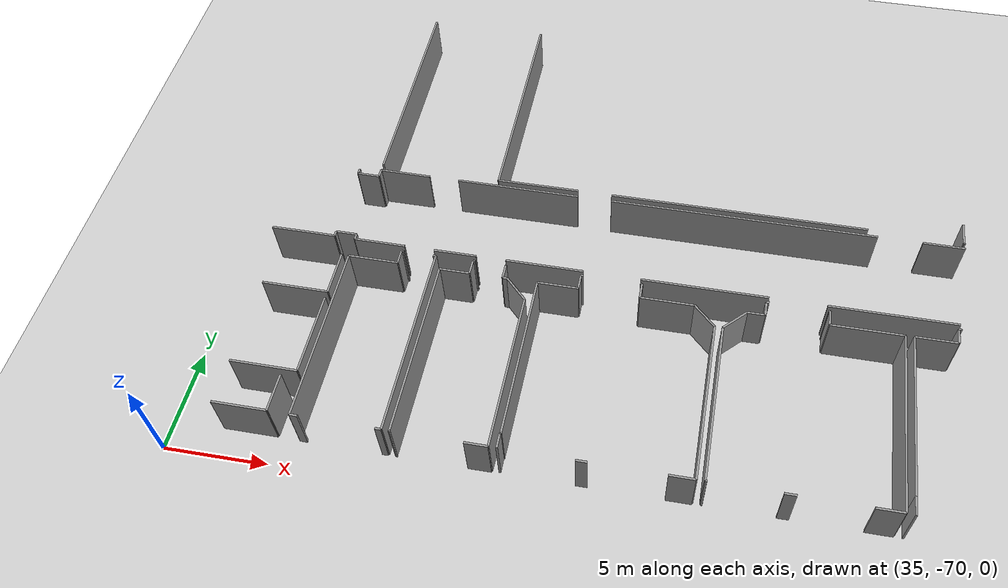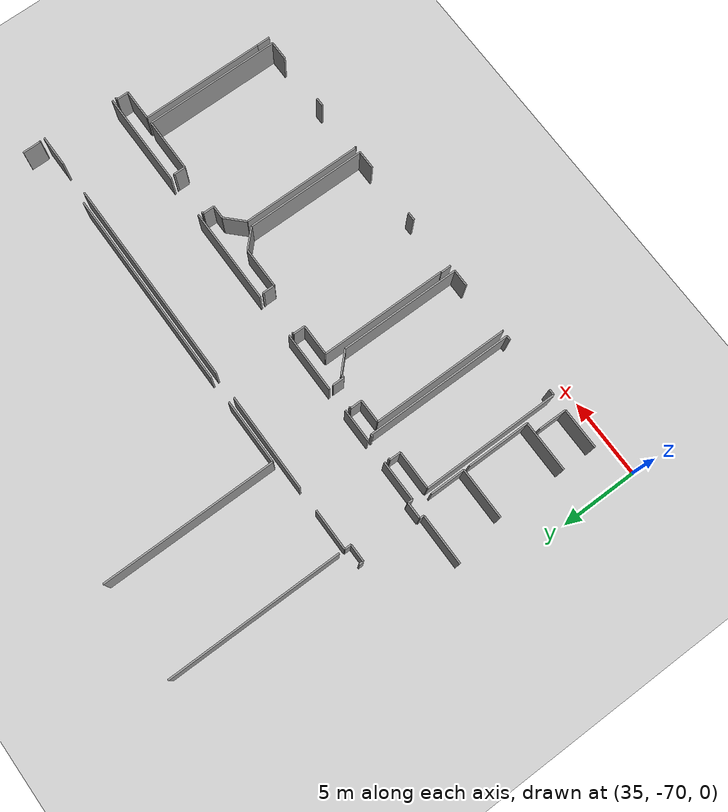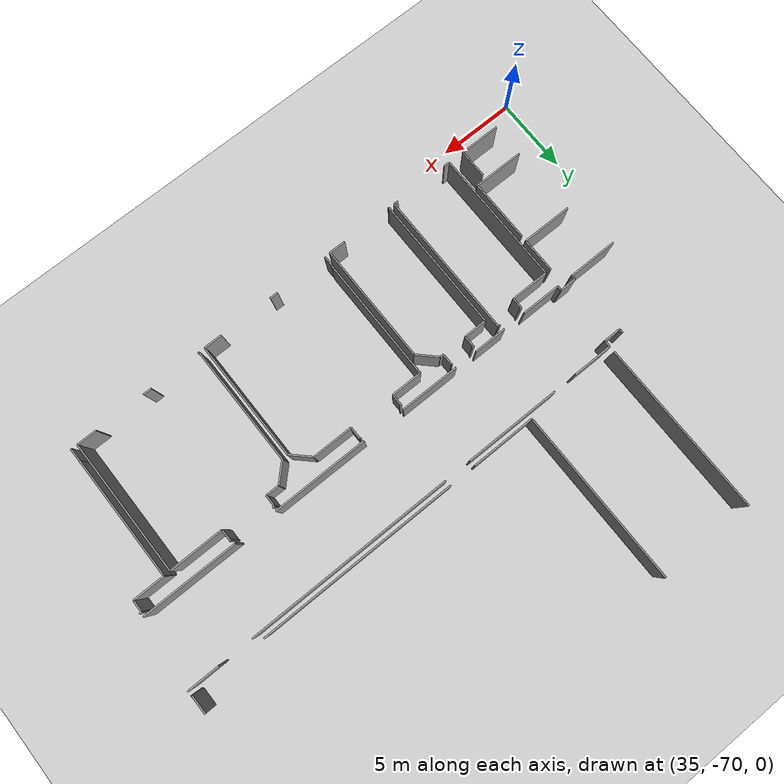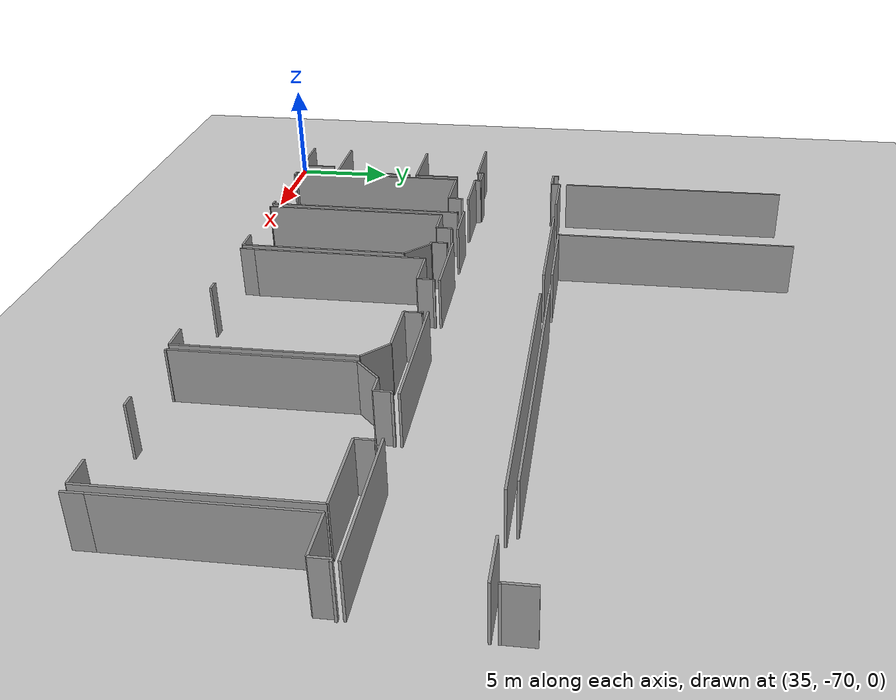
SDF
<sdf version="1.6">
 <world name="default">
  <model name="ground_plane">
   <static>1</static>
   <link name="link">
    <collision name="collision">
     <geometry><plane><normal>0 0 1</normal><size>100 100</size></plane></geometry>
     <surface><friction><ode><mu>100</mu><mu2>50</mu2></ode></friction></surface>
    </collision>
    <visual name="visual">
     <cast_shadows>0</cast_shadows>
     <geometry><plane><normal>0 0 1</normal><size>100 100</size></plane></geometry>
     <material>
      <script><uri>file://media/materials/scripts/gazebo.material</uri><name>Gazebo/Grey</name></script>
     </material>
    </visual>
   </link>
  </model>
  <model name="0510035520_A_40_1_103">
   <static>1</static>
   <link name="Wall_920">
    <collision name="Wall_920_Collision">
     <geometry><box><size>2.25810749932 0.1 2.5</size></box></geometry>
     <pose>1.12905374966 0 1.25 0 0 0</pose>
    </collision>
    <visual name="Wall_920_Visual">
     <pose>1.12905374966 0 1.25 0 0 0</pose>
     <geometry><box><size>2.25810749932 0.1 2.5</size></box></geometry>
     <material>
      <script><uri>file://media/materials/scripts/gazebo.material</uri><name>Gazebo/Grey</name></script>
      <ambient>1 1 1 1</ambient>
     </material>
    </visual>
    <pose>152.880248222 -128.302993001 0 0 0 -1.57079632679</pose>
   </link>
   <link name="Wall_921">
    <collision name="Wall_921_Collision">
     <geometry><box><size>3.27079142899 0.1 2.5</size></box></geometry>
     <pose>1.63539571449 0 1.25 0 0 0</pose>
    </collision>
    <visual name="Wall_921_Visual">
     <pose>1.63539571449 0 1.25 0 0 0</pose>
     <geometry><box><size>3.27079142899 0.1 2.5</size></box></geometry>
     <material>
      <script><uri>file://media/materials/scripts/gazebo.material</uri><name>Gazebo/Grey</name></script>
      <ambient>1 1 1 1</ambient>
     </material>
    </visual>
    <pose>152.880248222 -130.561100501 0 0 0 3.14159265359</pose>
   </link>
   <link name="Wall_925">
    <collision name="Wall_925_Collision">
     <geometry><box><size>4.07129396387 0.1 2.5</size></box></geometry>
     <pose>2.03564698194 0 1.25 0 0 0</pose>
    </collision>
    <visual name="Wall_925_Visual">
     <pose>2.03564698194 0 1.25 0 0 0</pose>
     <geometry><box><size>4.07129396387 0.1 2.5</size></box></geometry>
     <material>
      <script><uri>file://media/materials/scripts/gazebo.material</uri><name>Gazebo/Grey</name></script>
      <ambient>1 1 1 1</ambient>
     </material>
    </visual>
    <pose>152.862735643 -130.929372276 0 0 0 -1.57079632679</pose>
   </link>
   <link name="Wall_926">
    <collision name="Wall_926_Collision">
     <geometry><box><size>3.24490326838 0.1 2.5</size></box></geometry>
     <pose>1.62245163419 0 1.25 0 0 0</pose>
    </collision>
    <visual name="Wall_926_Visual">
     <pose>1.62245163419 0 1.25 0 0 0</pose>
     <geometry><box><size>3.24490326838 0.1 2.5</size></box></geometry>
     <material>
      <script><uri>file://media/materials/scripts/gazebo.material</uri><name>Gazebo/Grey</name></script>
      <ambient>1 1 1 1</ambient>
     </material>
    </visual>
    <pose>152.862735643 -135.000666239 0 0 0 3.14159265359</pose>
   </link>
   <link name="Wall_930">
    <collision name="Wall_930_Collision">
     <geometry><box><size>1.84821162302 0.1 2.5</size></box></geometry>
     <pose>0.924105811511 0 1.25 0 0 0</pose>
    </collision>
    <visual name="Wall_930_Visual">
     <pose>0.924105811511 0 1.25 0 0 0</pose>
     <geometry><box><size>1.84821162302 0.1 2.5</size></box></geometry>
     <material>
      <script><uri>file://media/materials/scripts/gazebo.material</uri><name>Gazebo/Grey</name></script>
      <ambient>1 1 1 1</ambient>
     </material>
    </visual>
    <pose>152.184313551 -135.334928078 0 0 0 -1.57079632679</pose>
   </link>
   <link name="Wall_931">
    <collision name="Wall_931_Collision">
     <geometry><box><size>2.6091205005 0.1 2.5</size></box></geometry>
     <pose>1.30456025025 0 1.25 0 0 0</pose>
    </collision>
    <visual name="Wall_931_Visual">
     <pose>1.30456025025 0 1.25 0 0 0</pose>
     <geometry><box><size>2.6091205005 0.1 2.5</size></box></geometry>
     <material>
      <script><uri>file://media/materials/scripts/gazebo.material</uri><name>Gazebo/Grey</name></script>
      <ambient>1 1 1 1</ambient>
     </material>
    </visual>
    <pose>152.184313551 -137.183139701 0 0 0 3.14159265359</pose>
   </link>
   <link name="Wall_935">
    <collision name="Wall_935_Collision">
     <geometry><box><size>8.87710103362 0.1 2.5</size></box></geometry>
     <pose>4.43855051681 0 1.25 0 0 0</pose>
    </collision>
    <visual name="Wall_935_Visual">
     <pose>4.43855051681 0 1.25 0 0 0</pose>
     <geometry><box><size>8.87710103362 0.1 2.5</size></box></geometry>
     <material>
      <script><uri>file://media/materials/scripts/gazebo.material</uri><name>Gazebo/Grey</name></script>
      <ambient>1 1 1 1</ambient>
     </material>
    </visual>
    <pose>153.240905832 -137.198875642 0 0 0 1.57079632679</pose>
   </link>
   <link name="Wall_936">
    <collision name="Wall_936_Collision">
     <geometry><box><size>2.47891828098 0.1 2.5</size></box></geometry>
     <pose>1.23945914049 0 1.25 0 0 0</pose>
    </collision>
    <visual name="Wall_936_Visual">
     <pose>1.23945914049 0 1.25 0 0 0</pose>
     <geometry><box><size>2.47891828098 0.1 2.5</size></box></geometry>
     <material>
      <script><uri>file://media/materials/scripts/gazebo.material</uri><name>Gazebo/Grey</name></script>
      <ambient>1 1 1 1</ambient>
     </material>
    </visual>
    <pose>153.240905832 -128.321774608 0 0 0 0.0</pose>
   </link>
   <link name="Wall_937">
    <collision name="Wall_937_Collision">
     <geometry><box><size>0.715223888173 0.1 2.5</size></box></geometry>
     <pose>0.357611944087 0 1.25 0 0 0</pose>
    </collision>
    <visual name="Wall_937_Visual">
     <pose>0.357611944087 0 1.25 0 0 0</pose>
     <geometry><box><size>0.715223888173 0.1 2.5</size></box></geometry>
     <material>
      <script><uri>file://media/materials/scripts/gazebo.material</uri><name>Gazebo/Grey</name></script>
      <ambient>1 1 1 1</ambient>
     </material>
    </visual>
    <pose>155.719824113 -128.321774608 0 0 0 1.57079632679</pose>
   </link>
   <link name="Wall_938">
    <collision name="Wall_938_Collision">
     <geometry><box><size>0.121319027164 0.1 2.5</size></box></geometry>
     <pose>0.0606595135818 0 1.25 0 0 0</pose>
    </collision>
    <visual name="Wall_938_Visual">
     <pose>0.0606595135818 0 1.25 0 0 0</pose>
     <geometry><box><size>0.121319027164 0.1 2.5</size></box></geometry>
     <material>
      <script><uri>file://media/materials/scripts/gazebo.material</uri><name>Gazebo/Grey</name></script>
      <ambient>1 1 1 1</ambient>
     </material>
    </visual>
    <pose>155.719824113 -127.60655072 0 0 0 0.0</pose>
   </link>
   <link name="Wall_939">
    <collision name="Wall_939_Collision">
     <geometry><box><size>0.141877272352 0.1 2.5</size></box></geometry>
     <pose>0.0709386361762 0 1.25 0 0 0</pose>
    </collision>
    <visual name="Wall_939_Visual">
     <pose>0.0709386361762 0 1.25 0 0 0</pose>
     <geometry><box><size>0.141877272352 0.1 2.5</size></box></geometry>
     <material>
      <script><uri>file://media/materials/scripts/gazebo.material</uri><name>Gazebo/Grey</name></script>
      <ambient>1 1 1 1</ambient>
     </material>
    </visual>
    <pose>157.32489007 -127.60655072 0 0 0 0.0</pose>
   </link>
   <link name="Wall_940">
    <collision name="Wall_940_Collision">
     <geometry><box><size>9.60653802958 0.1 2.5</size></box></geometry>
     <pose>4.80326901479 0 1.25 0 0 0</pose>
    </collision>
    <visual name="Wall_940_Visual">
     <pose>4.80326901479 0 1.25 0 0 0</pose>
     <geometry><box><size>9.60653802958 0.1 2.5</size></box></geometry>
     <material>
      <script><uri>file://media/materials/scripts/gazebo.material</uri><name>Gazebo/Grey</name></script>
      <ambient>1 1 1 1</ambient>
     </material>
    </visual>
    <pose>157.466767343 -127.60655072 0 0 0 -1.57079632679</pose>
   </link>
   <link name="Wall_941">
    <collision name="Wall_941_Collision">
     <geometry><box><size>0.293906764551 0.1 2.5</size></box></geometry>
     <pose>0.146953382275 0 1.25 0 0 0</pose>
    </collision>
    <visual name="Wall_941_Visual">
     <pose>0.146953382275 0 1.25 0 0 0</pose>
     <geometry><box><size>0.293906764551 0.1 2.5</size></box></geometry>
     <material>
      <script><uri>file://media/materials/scripts/gazebo.material</uri><name>Gazebo/Grey</name></script>
      <ambient>1 1 1 1</ambient>
     </material>
    </visual>
    <pose>157.466767343 -137.213088749 0 0 0 3.14159265359</pose>
   </link>
   <link name="Wall_942">
    <collision name="Wall_942_Collision">
     <geometry><box><size>0.376408183269 0.1 2.5</size></box></geometry>
     <pose>0.188204091635 0 1.25 0 0 0</pose>
    </collision>
    <visual name="Wall_942_Visual">
     <pose>0.188204091635 0 1.25 0 0 0</pose>
     <geometry><box><size>0.376408183269 0.1 2.5</size></box></geometry>
     <material>
      <script><uri>file://media/materials/scripts/gazebo.material</uri><name>Gazebo/Grey</name></script>
      <ambient>1 1 1 1</ambient>
     </material>
    </visual>
    <pose>153.617045577 -137.213088749 0 0 0 3.10382384806</pose>
   </link>
   <link name="Wall_943">
    <collision name="Wall_943_Collision">
     <geometry><box><size>8.90628866568 0.1 2.5</size></box></geometry>
     <pose>4.45314433284 0 1.25 0 0 0</pose>
    </collision>
    <visual name="Wall_943_Visual">
     <pose>4.45314433284 0 1.25 0 0 0</pose>
     <geometry><box><size>8.90628866568 0.1 2.5</size></box></geometry>
     <material>
      <script><uri>file://media/materials/scripts/gazebo.material</uri><name>Gazebo/Grey</name></script>
      <ambient>1 1 1 1</ambient>
     </material>
    </visual>
    <pose>157.834277701 -137.244814436 0 0 0 1.57079632679</pose>
   </link>
   <link name="Wall_944">
    <collision name="Wall_944_Collision">
     <geometry><box><size>1.49821384382 0.1 2.5</size></box></geometry>
     <pose>0.74910692191 0 1.25 0 0 0</pose>
    </collision>
    <visual name="Wall_944_Visual">
     <pose>0.74910692191 0 1.25 0 0 0</pose>
     <geometry><box><size>1.49821384382 0.1 2.5</size></box></geometry>
     <material>
      <script><uri>file://media/materials/scripts/gazebo.material</uri><name>Gazebo/Grey</name></script>
      <ambient>1 1 1 1</ambient>
     </material>
    </visual>
    <pose>157.834277701 -128.338525771 0 0 0 0.0</pose>
   </link>
   <link name="Wall_945">
    <collision name="Wall_945_Collision">
     <geometry><box><size>0.757101795039 0.1 2.5</size></box></geometry>
     <pose>0.37855089752 0 1.25 0 0 0</pose>
    </collision>
    <visual name="Wall_945_Visual">
     <pose>0.37855089752 0 1.25 0 0 0</pose>
     <geometry><box><size>0.757101795039 0.1 2.5</size></box></geometry>
     <material>
      <script><uri>file://media/materials/scripts/gazebo.material</uri><name>Gazebo/Grey</name></script>
      <ambient>1 1 1 1</ambient>
     </material>
    </visual>
    <pose>159.332491545 -128.338525771 0 0 0 1.57079632679</pose>
   </link>
   <link name="Wall_946">
    <collision name="Wall_946_Collision">
     <geometry><box><size>0.120303805179 0.1 2.5</size></box></geometry>
     <pose>0.0601519025895 0 1.25 0 0 0</pose>
    </collision>
    <visual name="Wall_946_Visual">
     <pose>0.0601519025895 0 1.25 0 0 0</pose>
     <geometry><box><size>0.120303805179 0.1 2.5</size></box></geometry>
     <material>
      <script><uri>file://media/materials/scripts/gazebo.material</uri><name>Gazebo/Grey</name></script>
      <ambient>1 1 1 1</ambient>
     </material>
    </visual>
    <pose>159.332491545 -127.581423976 0 0 0 0.0</pose>
   </link>
   <link name="Wall_947">
    <collision name="Wall_947_Collision">
     <geometry><box><size>0.0489844607585 0.1 2.5</size></box></geometry>
     <pose>0.0244922303792 0 1.25 0 0 0</pose>
    </collision>
    <visual name="Wall_947_Visual">
     <pose>0.0244922303792 0 1.25 0 0 0</pose>
     <geometry><box><size>0.0489844607585 0.1 2.5</size></box></geometry>
     <material>
      <script><uri>file://media/materials/scripts/gazebo.material</uri><name>Gazebo/Grey</name></script>
      <ambient>1 1 1 1</ambient>
     </material>
    </visual>
    <pose>160.93095856 -127.581423976 0 0 0 0.0</pose>
   </link>
   <link name="Wall_948">
    <collision name="Wall_948_Collision">
     <geometry><box><size>0.740604437789 0.1 2.5</size></box></geometry>
     <pose>0.370302218895 0 1.25 0 0 0</pose>
    </collision>
    <visual name="Wall_948_Visual">
     <pose>0.370302218895 0 1.25 0 0 0</pose>
     <geometry><box><size>0.740604437789 0.1 2.5</size></box></geometry>
     <material>
      <script><uri>file://media/materials/scripts/gazebo.material</uri><name>Gazebo/Grey</name></script>
      <ambient>1 1 1 1</ambient>
     </material>
    </visual>
    <pose>160.979943021 -127.581423976 0 0 0 -1.57079632679</pose>
   </link>
   <link name="Wall_949">
    <collision name="Wall_949_Collision">
     <geometry><box><size>0.234770083946 0.1 2.5</size></box></geometry>
     <pose>0.117385041973 0 1.25 0 0 0</pose>
    </collision>
    <visual name="Wall_949_Visual">
     <pose>0.117385041973 0 1.25 0 0 0</pose>
     <geometry><box><size>0.234770083946 0.1 2.5</size></box></geometry>
     <material>
      <script><uri>file://media/materials/scripts/gazebo.material</uri><name>Gazebo/Grey</name></script>
      <ambient>1 1 1 1</ambient>
     </material>
    </visual>
    <pose>160.979943021 -128.322028414 0 0 0 0.0</pose>
   </link>
   <link name="Wall_950">
    <collision name="Wall_950_Collision">
     <geometry><box><size>1.50431620233 0.1 2.5</size></box></geometry>
     <pose>0.752158101166 0 1.25 0 0 0</pose>
    </collision>
    <visual name="Wall_950_Visual">
     <pose>0.752158101166 0 1.25 0 0 0</pose>
     <geometry><box><size>1.50431620233 0.1 2.5</size></box></geometry>
     <material>
      <script><uri>file://media/materials/scripts/gazebo.material</uri><name>Gazebo/Grey</name></script>
      <ambient>1 1 1 1</ambient>
     </material>
    </visual>
    <pose>161.214713105 -128.322028414 0 0 0 -0.780387468038</pose>
   </link>
   <link name="Wall_951">
    <collision name="Wall_951_Collision">
     <geometry><box><size>7.83269141693 0.1 2.5</size></box></geometry>
     <pose>3.91634570847 0 1.25 0 0 0</pose>
    </collision>
    <visual name="Wall_951_Visual">
     <pose>3.91634570847 0 1.25 0 0 0</pose>
     <geometry><box><size>7.83269141693 0.1 2.5</size></box></geometry>
     <material>
      <script><uri>file://media/materials/scripts/gazebo.material</uri><name>Gazebo/Grey</name></script>
      <ambient>1 1 1 1</ambient>
     </material>
    </visual>
    <pose>162.283741854 -129.380397333 0 0 0 -1.57079632679</pose>
   </link>
   <link name="Wall_952">
    <collision name="Wall_952_Collision">
     <geometry><box><size>1.09948540936 0.1 2.5</size></box></geometry>
     <pose>0.549742704678 0 1.25 0 0 0</pose>
    </collision>
    <visual name="Wall_952_Visual">
     <pose>0.549742704678 0 1.25 0 0 0</pose>
     <geometry><box><size>1.09948540936 0.1 2.5</size></box></geometry>
     <material>
      <script><uri>file://media/materials/scripts/gazebo.material</uri><name>Gazebo/Grey</name></script>
      <ambient>1 1 1 1</ambient>
     </material>
    </visual>
    <pose>162.283741854 -137.213088749 0 0 0 3.14159265359</pose>
   </link>
   <link name="Wall_953">
    <collision name="Wall_953_Collision">
     <geometry><box><size>0.0558291329413 0.1 2.5</size></box></geometry>
     <pose>0.0279145664706 0 1.25 0 0 0</pose>
    </collision>
    <visual name="Wall_953_Visual">
     <pose>0.0279145664706 0 1.25 0 0 0</pose>
     <geometry><box><size>0.0558291329413 0.1 2.5</size></box></geometry>
     <material>
      <script><uri>file://media/materials/scripts/gazebo.material</uri><name>Gazebo/Grey</name></script>
      <ambient>1 1 1 1</ambient>
     </material>
    </visual>
    <pose>157.880216496 -137.213088749 0 0 0 -2.53719807573</pose>
   </link>
   <link name="Wall_954">
    <collision name="Wall_954_Collision">
     <geometry><box><size>0.0347713529736 0.1 2.5</size></box></geometry>
     <pose>0.0173856764868 0 1.25 0 0 0</pose>
    </collision>
    <visual name="Wall_954_Visual">
     <pose>0.0173856764868 0 1.25 0 0 0</pose>
     <geometry><box><size>0.0347713529736 0.1 2.5</size></box></geometry>
     <material>
      <script><uri>file://media/materials/scripts/gazebo.material</uri><name>Gazebo/Grey</name></script>
      <ambient>1 1 1 1</ambient>
     </material>
    </visual>
    <pose>162.65480549 -136.505225221 0 0 0 0.0</pose>
   </link>
   <link name="Wall_955">
    <collision name="Wall_955_Collision">
     <geometry><box><size>8.1981713314 0.1 2.5</size></box></geometry>
     <pose>4.0990856657 0 1.25 0 0 0</pose>
    </collision>
    <visual name="Wall_955_Visual">
     <pose>4.0990856657 0 1.25 0 0 0</pose>
     <geometry><box><size>8.1981713314 0.1 2.5</size></box></geometry>
     <material>
      <script><uri>file://media/materials/scripts/gazebo.material</uri><name>Gazebo/Grey</name></script>
      <ambient>1 1 1 1</ambient>
     </material>
    </visual>
    <pose>162.689576843 -136.505225221 0 0 0 1.57079632679</pose>
   </link>
   <link name="Wall_956">
    <collision name="Wall_956_Collision">
     <geometry><box><size>2.00785528011 0.1 2.5</size></box></geometry>
     <pose>1.00392764005 0 1.25 0 0 0</pose>
    </collision>
    <visual name="Wall_956_Visual">
     <pose>1.00392764005 0 1.25 0 0 0</pose>
     <geometry><box><size>2.00785528011 0.1 2.5</size></box></geometry>
     <material>
      <script><uri>file://media/materials/scripts/gazebo.material</uri><name>Gazebo/Grey</name></script>
      <ambient>1 1 1 1</ambient>
     </material>
    </visual>
    <pose>162.689576843 -128.307053889 0 0 0 0.0</pose>
   </link>
   <link name="Wall_957">
    <collision name="Wall_957_Collision">
     <geometry><box><size>0.77156870832 0.1 2.5</size></box></geometry>
     <pose>0.38578435416 0 1.25 0 0 0</pose>
    </collision>
    <visual name="Wall_957_Visual">
     <pose>0.38578435416 0 1.25 0 0 0</pose>
     <geometry><box><size>0.77156870832 0.1 2.5</size></box></geometry>
     <material>
      <script><uri>file://media/materials/scripts/gazebo.material</uri><name>Gazebo/Grey</name></script>
      <ambient>1 1 1 1</ambient>
     </material>
    </visual>
    <pose>164.697432123 -128.307053889 0 0 0 1.57079632679</pose>
   </link>
   <link name="Wall_958">
    <collision name="Wall_958_Collision">
     <geometry><box><size>0.124618498614 0.1 2.5</size></box></geometry>
     <pose>0.0623092493068 0 1.25 0 0 0</pose>
    </collision>
    <visual name="Wall_958_Visual">
     <pose>0.0623092493068 0 1.25 0 0 0</pose>
     <geometry><box><size>0.124618498614 0.1 2.5</size></box></geometry>
     <material>
      <script><uri>file://media/materials/scripts/gazebo.material</uri><name>Gazebo/Grey</name></script>
      <ambient>1 1 1 1</ambient>
     </material>
    </visual>
    <pose>164.697432123 -127.535485181 0 0 0 0.0</pose>
   </link>
   <link name="Wall_959">
    <collision name="Wall_959_Collision">
     <geometry><box><size>0.0794411202974 0.1 2.5</size></box></geometry>
     <pose>0.0397205601487 0 1.25 0 0 0</pose>
    </collision>
    <visual name="Wall_959_Visual">
     <pose>0.0397205601487 0 1.25 0 0 0</pose>
     <geometry><box><size>0.0794411202974 0.1 2.5</size></box></geometry>
     <material>
      <script><uri>file://media/materials/scripts/gazebo.material</uri><name>Gazebo/Grey</name></script>
      <ambient>1 1 1 1</ambient>
     </material>
    </visual>
    <pose>167.612642052 -127.535485181 0 0 0 0.0</pose>
   </link>
   <link name="Wall_960">
    <collision name="Wall_960_Collision">
     <geometry><box><size>0.792634564501 0.1 2.5</size></box></geometry>
     <pose>0.396317282251 0 1.25 0 0 0</pose>
    </collision>
    <visual name="Wall_960_Visual">
     <pose>0.396317282251 0 1.25 0 0 0</pose>
     <geometry><box><size>0.792634564501 0.1 2.5</size></box></geometry>
     <material>
      <script><uri>file://media/materials/scripts/gazebo.material</uri><name>Gazebo/Grey</name></script>
      <ambient>1 1 1 1</ambient>
     </material>
    </visual>
    <pose>167.692083172 -127.535485181 0 0 0 -1.57079632679</pose>
   </link>
   <link name="Wall_961">
    <collision name="Wall_961_Collision">
     <geometry><box><size>2.63247060615 0.1 2.5</size></box></geometry>
     <pose>1.31623530308 0 1.25 0 0 0</pose>
    </collision>
    <visual name="Wall_961_Visual">
     <pose>1.31623530308 0 1.25 0 0 0</pose>
     <geometry><box><size>2.63247060615 0.1 2.5</size></box></geometry>
     <material>
      <script><uri>file://media/materials/scripts/gazebo.material</uri><name>Gazebo/Grey</name></script>
      <ambient>1 1 1 1</ambient>
     </material>
    </visual>
    <pose>167.692083172 -128.328119745 0 0 0 0.0</pose>
   </link>
   <link name="Wall_962">
    <collision name="Wall_962_Collision">
     <geometry><box><size>1.47820399923 0.1 2.5</size></box></geometry>
     <pose>0.739101999615 0 1.25 0 0 0</pose>
    </collision>
    <visual name="Wall_962_Visual">
     <pose>0.739101999615 0 1.25 0 0 0</pose>
     <geometry><box><size>1.47820399923 0.1 2.5</size></box></geometry>
     <material>
      <script><uri>file://media/materials/scripts/gazebo.material</uri><name>Gazebo/Grey</name></script>
      <ambient>1 1 1 1</ambient>
     </material>
    </visual>
    <pose>170.324553778 -128.328119745 0 0 0 -0.773256943593</pose>
   </link>
   <link name="Wall_963">
    <collision name="Wall_963_Collision">
     <geometry><box><size>7.84538169174 0.1 2.5</size></box></geometry>
     <pose>3.92269084587 0 1.25 0 0 0</pose>
    </collision>
    <visual name="Wall_963_Visual">
     <pose>3.92269084587 0 1.25 0 0 0</pose>
     <geometry><box><size>7.84538169174 0.1 2.5</size></box></geometry>
     <material>
      <script><uri>file://media/materials/scripts/gazebo.material</uri><name>Gazebo/Grey</name></script>
      <ambient>1 1 1 1</ambient>
     </material>
    </visual>
    <pose>171.382415086 -129.360600504 0 0 0 -1.57079632679</pose>
   </link>
   <link name="Wall_964">
    <collision name="Wall_964_Collision">
     <geometry><box><size>1.20278424629 0.1 2.5</size></box></geometry>
     <pose>0.601392123146 0 1.25 0 0 0</pose>
    </collision>
    <visual name="Wall_964_Visual">
     <pose>0.601392123146 0 1.25 0 0 0</pose>
     <geometry><box><size>1.20278424629 0.1 2.5</size></box></geometry>
     <material>
      <script><uri>file://media/materials/scripts/gazebo.material</uri><name>Gazebo/Grey</name></script>
      <ambient>1 1 1 1</ambient>
     </material>
    </visual>
    <pose>171.382415086 -137.205982196 0 0 0 3.14159265359</pose>
   </link>
   <link name="Wall_965">
    <collision name="Wall_965_Collision">
     <geometry><box><size>0.539336679336 0.1 2.5</size></box></geometry>
     <pose>0.269668339668 0 1.25 0 0 0</pose>
    </collision>
    <visual name="Wall_965_Visual">
     <pose>0.269668339668 0 1.25 0 0 0</pose>
     <geometry><box><size>0.539336679336 0.1 2.5</size></box></geometry>
     <material>
      <script><uri>file://media/materials/scripts/gazebo.material</uri><name>Gazebo/Grey</name></script>
      <ambient>1 1 1 1</ambient>
     </material>
    </visual>
    <pose>166.672292688 -137.205982196 0 0 0 3.14159265359</pose>
   </link>
   <link name="Wall_966">
    <collision name="Wall_966_Collision">
     <geometry><box><size>0.700810105648 0.1 2.5</size></box></geometry>
     <pose>0.350405052824 0 1.25 0 0 0</pose>
    </collision>
    <visual name="Wall_966_Visual">
     <pose>0.350405052824 0 1.25 0 0 0</pose>
     <geometry><box><size>0.700810105648 0.1 2.5</size></box></geometry>
     <material>
      <script><uri>file://media/materials/scripts/gazebo.material</uri><name>Gazebo/Grey</name></script>
      <ambient>1 1 1 1</ambient>
     </material>
    </visual>
    <pose>162.663434877 -137.205982196 0 0 0 1.58311008323</pose>
   </link>
   <link name="Wall_967">
    <collision name="Wall_967_Collision">
     <geometry><box><size>7.83396044441 0.1 2.5</size></box></geometry>
     <pose>3.91698022221 0 1.25 0 0 0</pose>
    </collision>
    <visual name="Wall_967_Visual">
     <pose>3.91698022221 0 1.25 0 0 0</pose>
     <geometry><box><size>7.83396044441 0.1 2.5</size></box></geometry>
     <material>
      <script><uri>file://media/materials/scripts/gazebo.material</uri><name>Gazebo/Grey</name></script>
      <ambient>1 1 1 1</ambient>
     </material>
    </visual>
    <pose>171.770737495 -137.176286952 0 0 0 1.57079632679</pose>
   </link>
   <link name="Wall_968">
    <collision name="Wall_968_Collision">
     <geometry><box><size>1.48134464399 0.1 2.5</size></box></geometry>
     <pose>0.740672321995 0 1.25 0 0 0</pose>
    </collision>
    <visual name="Wall_968_Visual">
     <pose>0.740672321995 0 1.25 0 0 0</pose>
     <geometry><box><size>1.48134464399 0.1 2.5</size></box></geometry>
     <material>
      <script><uri>file://media/materials/scripts/gazebo.material</uri><name>Gazebo/Grey</name></script>
      <ambient>1 1 1 1</ambient>
     </material>
    </visual>
    <pose>171.770737495 -129.342326508 0 0 0 0.780309765346</pose>
   </link>
   <link name="Wall_969">
    <collision name="Wall_969_Collision">
     <geometry><box><size>0.856593549533 0.1 2.5</size></box></geometry>
     <pose>0.428296774767 0 1.25 0 0 0</pose>
    </collision>
    <visual name="Wall_969_Visual">
     <pose>0.428296774767 0 1.25 0 0 0</pose>
     <geometry><box><size>0.856593549533 0.1 2.5</size></box></geometry>
     <material>
      <script><uri>file://media/materials/scripts/gazebo.material</uri><name>Gazebo/Grey</name></script>
      <ambient>1 1 1 1</ambient>
     </material>
    </visual>
    <pose>172.823522693 -128.300201141 0 0 0 0.0</pose>
   </link>
   <link name="Wall_970">
    <collision name="Wall_970_Collision">
     <geometry><box><size>0.74187346527 0.1 2.5</size></box></geometry>
     <pose>0.370936732635 0 1.25 0 0 0</pose>
    </collision>
    <visual name="Wall_970_Visual">
     <pose>0.370936732635 0 1.25 0 0 0</pose>
     <geometry><box><size>0.74187346527 0.1 2.5</size></box></geometry>
     <material>
      <script><uri>file://media/materials/scripts/gazebo.material</uri><name>Gazebo/Grey</name></script>
      <ambient>1 1 1 1</ambient>
     </material>
    </visual>
    <pose>173.680116243 -128.300201141 0 0 0 1.57079632679</pose>
   </link>
   <link name="Wall_971">
    <collision name="Wall_971_Collision">
     <geometry><box><size>0.130963636018 0.1 2.5</size></box></geometry>
     <pose>0.0654818180088 0 1.25 0 0 0</pose>
    </collision>
    <visual name="Wall_971_Visual">
     <pose>0.0654818180088 0 1.25 0 0 0</pose>
     <geometry><box><size>0.130963636018 0.1 2.5</size></box></geometry>
     <material>
      <script><uri>file://media/materials/scripts/gazebo.material</uri><name>Gazebo/Grey</name></script>
      <ambient>1 1 1 1</ambient>
     </material>
    </visual>
    <pose>173.680116243 -127.558327676 0 0 0 0.0</pose>
   </link>
   <link name="Wall_972">
    <collision name="Wall_972_Collision">
     <geometry><box><size>0.072334566405 0.1 2.5</size></box></geometry>
     <pose>0.0361672832025 0 1.25 0 0 0</pose>
    </collision>
    <visual name="Wall_972_Visual">
     <pose>0.0361672832025 0 1.25 0 0 0</pose>
     <geometry><box><size>0.072334566405 0.1 2.5</size></box></geometry>
     <material>
      <script><uri>file://media/materials/scripts/gazebo.material</uri><name>Gazebo/Grey</name></script>
      <ambient>1 1 1 1</ambient>
     </material>
    </visual>
    <pose>176.623752387 -127.558327676 0 0 0 0.0</pose>
   </link>
   <link name="Wall_973">
    <collision name="Wall_973_Collision">
     <geometry><box><size>0.77359915229 0.1 2.5</size></box></geometry>
     <pose>0.386799576145 0 1.25 0 0 0</pose>
    </collision>
    <visual name="Wall_973_Visual">
     <pose>0.386799576145 0 1.25 0 0 0</pose>
     <geometry><box><size>0.77359915229 0.1 2.5</size></box></geometry>
     <material>
      <script><uri>file://media/materials/scripts/gazebo.material</uri><name>Gazebo/Grey</name></script>
      <ambient>1 1 1 1</ambient>
     </material>
    </visual>
    <pose>176.696086954 -127.558327676 0 0 0 -1.57079632679</pose>
   </link>
   <link name="Wall_974">
    <collision name="Wall_974_Collision">
     <geometry><box><size>3.51926700973 0.1 2.5</size></box></geometry>
     <pose>1.75963350486 0 1.25 0 0 0</pose>
    </collision>
    <visual name="Wall_974_Visual">
     <pose>1.75963350486 0 1.25 0 0 0</pose>
     <geometry><box><size>3.51926700973 0.1 2.5</size></box></geometry>
     <material>
      <script><uri>file://media/materials/scripts/gazebo.material</uri><name>Gazebo/Grey</name></script>
      <ambient>1 1 1 1</ambient>
     </material>
    </visual>
    <pose>176.696086954 -128.331926828 0 0 0 0.0</pose>
   </link>
   <link name="Wall_975">
    <collision name="Wall_975_Collision">
     <geometry><box><size>8.86111128736 0.1 2.5</size></box></geometry>
     <pose>4.43055564368 0 1.25 0 0 0</pose>
    </collision>
    <visual name="Wall_975_Visual">
     <pose>4.43055564368 0 1.25 0 0 0</pose>
     <geometry><box><size>8.86111128736 0.1 2.5</size></box></geometry>
     <material>
      <script><uri>file://media/materials/scripts/gazebo.material</uri><name>Gazebo/Grey</name></script>
      <ambient>1 1 1 1</ambient>
     </material>
    </visual>
    <pose>180.215353963 -128.331926828 0 0 0 -1.57079632679</pose>
   </link>
   <link name="Wall_976">
    <collision name="Wall_976_Collision">
     <geometry><box><size>1.28019492262 0.1 2.5</size></box></geometry>
     <pose>0.640097461311 0 1.25 0 0 0</pose>
    </collision>
    <visual name="Wall_976_Visual">
     <pose>0.640097461311 0 1.25 0 0 0</pose>
     <geometry><box><size>1.28019492262 0.1 2.5</size></box></geometry>
     <material>
      <script><uri>file://media/materials/scripts/gazebo.material</uri><name>Gazebo/Grey</name></script>
      <ambient>1 1 1 1</ambient>
     </material>
    </visual>
    <pose>180.215353963 -137.193038115 0 0 0 3.14159265359</pose>
   </link>
   <link name="Wall_977">
    <collision name="Wall_977_Collision">
     <geometry><box><size>0.548219871701 0.1 2.5</size></box></geometry>
     <pose>0.274109935851 0 1.25 0 0 0</pose>
    </collision>
    <visual name="Wall_977_Visual">
     <pose>0.274109935851 0 1.25 0 0 0</pose>
     <geometry><box><size>0.548219871701 0.1 2.5</size></box></geometry>
     <material>
      <script><uri>file://media/materials/scripts/gazebo.material</uri><name>Gazebo/Grey</name></script>
      <ambient>1 1 1 1</ambient>
     </material>
    </visual>
    <pose>175.671474166 -137.193038115 0 0 0 3.14159265359</pose>
   </link>
   <link name="Wall_978">
    <collision name="Wall_978_Collision">
     <geometry><box><size>0.0782104014676 0.1 2.5</size></box></geometry>
     <pose>0.0391052007338 0 1.25 0 0 0</pose>
    </collision>
    <visual name="Wall_978_Visual">
     <pose>0.0391052007338 0 1.25 0 0 0</pose>
     <geometry><box><size>0.0782104014676 0.1 2.5</size></box></geometry>
     <material>
      <script><uri>file://media/materials/scripts/gazebo.material</uri><name>Gazebo/Grey</name></script>
      <ambient>1 1 1 1</ambient>
     </material>
    </visual>
    <pose>171.84713295 -137.193038115 0 0 0 2.92573961016</pose>
   </link>
   <link name="Wall_979">
    <collision name="Wall_979_Collision">
     <geometry><box><size>8.04284236775 0.1 2.5</size></box></geometry>
     <pose>4.02142118388 0 1.25 0 0 0</pose>
    </collision>
    <visual name="Wall_979_Visual">
     <pose>4.02142118388 0 1.25 0 0 0</pose>
     <geometry><box><size>8.04284236775 0.1 2.5</size></box></geometry>
     <material>
      <script><uri>file://media/materials/scripts/gazebo.material</uri><name>Gazebo/Grey</name></script>
      <ambient>1 1 1 1</ambient>
     </material>
    </visual>
    <pose>180.626518867 -136.364616976 0 0 0 1.57079632679</pose>
   </link>
   <link name="Wall_980">
    <collision name="Wall_980_Collision">
     <geometry><box><size>2.03881955064 0.1 2.5</size></box></geometry>
     <pose>1.01940977532 0 1.25 0 0 0</pose>
    </collision>
    <visual name="Wall_980_Visual">
     <pose>1.01940977532 0 1.25 0 0 0</pose>
     <geometry><box><size>2.03881955064 0.1 2.5</size></box></geometry>
     <material>
      <script><uri>file://media/materials/scripts/gazebo.material</uri><name>Gazebo/Grey</name></script>
      <ambient>1 1 1 1</ambient>
     </material>
    </visual>
    <pose>180.626518867 -128.321774608 0 0 0 0.0</pose>
   </link>
   <link name="Wall_981">
    <collision name="Wall_981_Collision">
     <geometry><box><size>0.777913845724 0.1 2.5</size></box></geometry>
     <pose>0.388956922862 0 1.25 0 0 0</pose>
    </collision>
    <visual name="Wall_981_Visual">
     <pose>0.388956922862 0 1.25 0 0 0</pose>
     <geometry><box><size>0.777913845724 0.1 2.5</size></box></geometry>
     <material>
      <script><uri>file://media/materials/scripts/gazebo.material</uri><name>Gazebo/Grey</name></script>
      <ambient>1 1 1 1</ambient>
     </material>
    </visual>
    <pose>182.665338418 -128.321774608 0 0 0 1.57079632679</pose>
   </link>
   <link name="Wall_982">
    <collision name="Wall_982_Collision">
     <geometry><box><size>0.150760464718 0.1 2.5</size></box></geometry>
     <pose>0.0753802323589 0 1.25 0 0 0</pose>
    </collision>
    <visual name="Wall_982_Visual">
     <pose>0.0753802323589 0 1.25 0 0 0</pose>
     <geometry><box><size>0.150760464718 0.1 2.5</size></box></geometry>
     <material>
      <script><uri>file://media/materials/scripts/gazebo.material</uri><name>Gazebo/Grey</name></script>
      <ambient>1 1 1 1</ambient>
     </material>
    </visual>
    <pose>182.665338418 -127.543860762 0 0 0 0.0</pose>
   </link>
   <link name="Wall_989">
    <collision name="Wall_989_Collision">
     <geometry><box><size>0.872082923692 0.1 2.5</size></box></geometry>
     <pose>0.436041461846 0 1.25 0 0 0</pose>
    </collision>
    <visual name="Wall_989_Visual">
     <pose>0.436041461846 0 1.25 0 0 0</pose>
     <geometry><box><size>0.872082923692 0.1 2.5</size></box></geometry>
     <material>
      <script><uri>file://media/materials/scripts/gazebo.material</uri><name>Gazebo/Grey</name></script>
      <ambient>1 1 1 1</ambient>
     </material>
    </visual>
    <pose>180.630072144 -137.236692661 0 0 0 1.57487080949</pose>
   </link>
   <link name="Wall_1056">
    <collision name="Wall_1056_Collision">
     <geometry><box><size>0.0654818180088 0.1 2.5</size></box></geometry>
     <pose>0.0327409090044 0 1.25 0 0 0</pose>
    </collision>
    <visual name="Wall_1056_Visual">
     <pose>0.0327409090044 0 1.25 0 0 0</pose>
     <geometry><box><size>0.0654818180088 0.1 2.5</size></box></geometry>
     <material>
      <script><uri>file://media/materials/scripts/gazebo.material</uri><name>Gazebo/Grey</name></script>
      <ambient>1 1 1 1</ambient>
     </material>
    </visual>
    <pose>183.145284611 -122.368005279 0 0 0 3.14159265359</pose>
   </link>
   <link name="Wall_1057">
    <collision name="Wall_1057_Collision">
     <geometry><box><size>1.19237822095 0.1 2.5</size></box></geometry>
     <pose>0.596189110475 0 1.25 0 0 0</pose>
    </collision>
    <visual name="Wall_1057_Visual">
     <pose>0.596189110475 0 1.25 0 0 0</pose>
     <geometry><box><size>1.19237822095 0.1 2.5</size></box></geometry>
     <material>
      <script><uri>file://media/materials/scripts/gazebo.material</uri><name>Gazebo/Grey</name></script>
      <ambient>1 1 1 1</ambient>
     </material>
    </visual>
    <pose>183.079802793 -122.368005279 0 0 0 1.57079632679</pose>
   </link>
   <link name="Wall_1069">
    <collision name="Wall_1069_Collision">
     <geometry><box><size>11.22835515 0.1 2.5</size></box></geometry>
     <pose>5.61417757502 0 1.25 0 0 0</pose>
    </collision>
    <visual name="Wall_1069_Visual">
     <pose>5.61417757502 0 1.25 0 0 0</pose>
     <geometry><box><size>11.22835515 0.1 2.5</size></box></geometry>
     <material>
      <script><uri>file://media/materials/scripts/gazebo.material</uri><name>Gazebo/Grey</name></script>
      <ambient>1 1 1 1</ambient>
     </material>
    </visual>
    <pose>159.45279535 -122.324096928 0 0 0 1.57079632679</pose>
   </link>
   <link name="Wall_1073">
    <collision name="Wall_1073_Collision">
     <geometry><box><size>12.9986484857 0.1 2.5</size></box></geometry>
     <pose>6.49932424287 0 1.25 0 0 0</pose>
    </collision>
    <visual name="Wall_1073_Visual">
     <pose>6.49932424287 0 1.25 0 0 0</pose>
     <geometry><box><size>12.9986484857 0.1 2.5</size></box></geometry>
     <material>
      <script><uri>file://media/materials/scripts/gazebo.material</uri><name>Gazebo/Grey</name></script>
      <ambient>1 1 1 1</ambient>
     </material>
    </visual>
    <pose>178.374248894 -122.308360988 0 0 0 3.14159265359</pose>
   </link>
   <link name="Wall_1074">
    <collision name="Wall_1074_Collision">
     <geometry><box><size>4.187820251 0.1 2.5</size></box></geometry>
     <pose>2.0939101255 0 1.25 0 0 0</pose>
    </collision>
    <visual name="Wall_1074_Visual">
     <pose>2.0939101255 0 1.25 0 0 0</pose>
     <geometry><box><size>4.187820251 0.1 2.5</size></box></geometry>
     <material>
      <script><uri>file://media/materials/scripts/gazebo.material</uri><name>Gazebo/Grey</name></script>
      <ambient>1 1 1 1</ambient>
     </material>
    </visual>
    <pose>163.640586037 -122.308360988 0 0 0 -3.13783509552</pose>
   </link>
   <link name="Wall_1075">
    <collision name="Wall_1075_Collision">
     <geometry><box><size>11.227847539 0.1 2.5</size></box></geometry>
     <pose>5.61392376952 0 1.25 0 0 0</pose>
    </collision>
    <visual name="Wall_1075_Visual">
     <pose>5.61392376952 0 1.25 0 0 0</pose>
     <geometry><box><size>11.227847539 0.1 2.5</size></box></geometry>
     <material>
      <script><uri>file://media/materials/scripts/gazebo.material</uri><name>Gazebo/Grey</name></script>
      <ambient>1 1 1 1</ambient>
     </material>
    </visual>
    <pose>153.272631519 -122.316482763 0 0 0 1.57079632679</pose>
   </link>
   <link name="Wall_1083">
    <collision name="Wall_1083_Collision">
     <geometry><box><size>0.290353487605 0.1 2.5</size></box></geometry>
     <pose>0.145176743802 0 1.25 0 0 0</pose>
    </collision>
    <visual name="Wall_1083_Visual">
     <pose>0.145176743802 0 1.25 0 0 0</pose>
     <geometry><box><size>0.290353487605 0.1 2.5</size></box></geometry>
     <material>
      <script><uri>file://media/materials/scripts/gazebo.material</uri><name>Gazebo/Grey</name></script>
      <ambient>1 1 1 1</ambient>
     </material>
    </visual>
    <pose>152.146242727 -122.822570923 0 0 0 -1.57079632679</pose>
   </link>
   <link name="Wall_1084">
    <collision name="Wall_1084_Collision">
     <geometry><box><size>1.11953604355 0.1 2.5</size></box></geometry>
     <pose>0.559768021777 0 1.25 0 0 0</pose>
    </collision>
    <visual name="Wall_1084_Visual">
     <pose>0.559768021777 0 1.25 0 0 0</pose>
     <geometry><box><size>1.11953604355 0.1 2.5</size></box></geometry>
     <material>
      <script><uri>file://media/materials/scripts/gazebo.material</uri><name>Gazebo/Grey</name></script>
      <ambient>1 1 1 1</ambient>
     </material>
    </visual>
    <pose>152.146242727 -123.11292441 0 0 0 0.0</pose>
   </link>
   <link name="Wall_1085">
    <collision name="Wall_1085_Collision">
     <geometry><box><size>0.426900844538 0.1 2.5</size></box></geometry>
     <pose>0.213450422269 0 1.25 0 0 0</pose>
    </collision>
    <visual name="Wall_1085_Visual">
     <pose>0.213450422269 0 1.25 0 0 0</pose>
     <geometry><box><size>0.426900844538 0.1 2.5</size></box></geometry>
     <material>
      <script><uri>file://media/materials/scripts/gazebo.material</uri><name>Gazebo/Grey</name></script>
      <ambient>1 1 1 1</ambient>
     </material>
    </visual>
    <pose>153.26577877 -123.11292441 0 0 0 1.57079632679</pose>
   </link>
   <link name="Wall_1086">
    <collision name="Wall_1086_Collision">
     <geometry><box><size>2.61394280493 0.1 2.5</size></box></geometry>
     <pose>1.30697140247 0 1.25 0 0 0</pose>
    </collision>
    <visual name="Wall_1086_Visual">
     <pose>1.30697140247 0 1.25 0 0 0</pose>
     <geometry><box><size>2.61394280493 0.1 2.5</size></box></geometry>
     <material>
      <script><uri>file://media/materials/scripts/gazebo.material</uri><name>Gazebo/Grey</name></script>
      <ambient>1 1 1 1</ambient>
     </material>
    </visual>
    <pose>153.26577877 -122.686023566 0 0 0 0.0</pose>
   </link>
   <link name="Wall_1087">
    <collision name="Wall_1087_Collision">
     <geometry><box><size>6.27914797495 0.1 2.5</size></box></geometry>
     <pose>3.13957398747 0 1.25 0 0 0</pose>
    </collision>
    <visual name="Wall_1087_Visual">
     <pose>3.13957398747 0 1.25 0 0 0</pose>
     <geometry><box><size>6.27914797495 0.1 2.5</size></box></geometry>
     <material>
      <script><uri>file://media/materials/scripts/gazebo.material</uri><name>Gazebo/Grey</name></script>
      <ambient>1 1 1 1</ambient>
     </material>
    </visual>
    <pose>157.412199161 -122.686023566 0 0 0 0.0</pose>
   </link>
   <link name="Wall_1088">
    <collision name="Wall_1088_Collision">
     <geometry><box><size>13.4329096897 0.1 2.5</size></box></geometry>
     <pose>6.71645484483 0 1.25 0 0 0</pose>
    </collision>
    <visual name="Wall_1088_Visual">
     <pose>6.71645484483 0 1.25 0 0 0</pose>
     <geometry><box><size>13.4329096897 0.1 2.5</size></box></geometry>
     <material>
      <script><uri>file://media/materials/scripts/gazebo.material</uri><name>Gazebo/Grey</name></script>
      <ambient>1 1 1 1</ambient>
     </material>
    </visual>
    <pose>165.427630535 -122.686023566 0 0 0 0.0</pose>
   </link>
   <link name="Wall_1089">
    <collision name="Wall_1089_Collision">
     <geometry><box><size>2.0674995717 0.1 2.5</size></box></geometry>
     <pose>1.03374978585 0 1.25 0 0 0</pose>
    </collision>
    <visual name="Wall_1089_Visual">
     <pose>1.03374978585 0 1.25 0 0 0</pose>
     <geometry><box><size>2.0674995717 0.1 2.5</size></box></geometry>
     <material>
      <script><uri>file://media/materials/scripts/gazebo.material</uri><name>Gazebo/Grey</name></script>
      <ambient>1 1 1 1</ambient>
     </material>
    </visual>
    <pose>181.072201319 -122.686023566 0 0 0 0.0</pose>
   </link>
   <link name="Wall_1109">
    <collision name="Wall_1109_Collision">
     <geometry><box><size>6.19336171725 0.1 2.5</size></box></geometry>
     <pose>3.09668085862 0 1.25 0 0 0</pose>
    </collision>
    <visual name="Wall_1109_Visual">
     <pose>3.09668085862 0 1.25 0 0 0</pose>
     <geometry><box><size>6.19336171725 0.1 2.5</size></box></geometry>
     <material>
      <script><uri>file://media/materials/scripts/gazebo.material</uri><name>Gazebo/Grey</name></script>
      <ambient>1 1 1 1</ambient>
     </material>
    </visual>
    <pose>182.759500257 -127.278634019 0 0 0 3.14159265359</pose>
   </link>
   <link name="Wall_1110">
    <collision name="Wall_1110_Collision">
     <geometry><box><size>6.20452915908 0.1 2.5</size></box></geometry>
     <pose>3.10226457954 0 1.25 0 0 0</pose>
    </collision>
    <visual name="Wall_1110_Visual">
     <pose>3.10226457954 0 1.25 0 0 0</pose>
     <geometry><box><size>6.20452915908 0.1 2.5</size></box></geometry>
     <material>
      <script><uri>file://media/materials/scripts/gazebo.material</uri><name>Gazebo/Grey</name></script>
      <ambient>1 1 1 1</ambient>
     </material>
    </visual>
    <pose>173.788237384 -127.278634019 0 0 0 3.14159265359</pose>
   </link>
   <link name="Wall_1111">
    <collision name="Wall_1111_Collision">
     <geometry><box><size>3.87459470435 0.1 2.5</size></box></geometry>
     <pose>1.93729735217 0 1.25 0 0 0</pose>
    </collision>
    <visual name="Wall_1111_Visual">
     <pose>1.93729735217 0 1.25 0 0 0</pose>
     <geometry><box><size>3.87459470435 0.1 2.5</size></box></geometry>
     <material>
      <script><uri>file://media/materials/scripts/gazebo.material</uri><name>Gazebo/Grey</name></script>
      <ambient>1 1 1 1</ambient>
     </material>
    </visual>
    <pose>164.78042652 -127.278634019 0 0 0 3.14159265359</pose>
   </link>
   <link name="Wall_1112">
    <collision name="Wall_1112_Collision">
     <geometry><box><size>2.12587483582 0.1 2.5</size></box></geometry>
     <pose>1.06293741791 0 1.25 0 0 0</pose>
    </collision>
    <visual name="Wall_1112_Visual">
     <pose>1.06293741791 0 1.25 0 0 0</pose>
     <geometry><box><size>2.12587483582 0.1 2.5</size></box></geometry>
     <material>
      <script><uri>file://media/materials/scripts/gazebo.material</uri><name>Gazebo/Grey</name></script>
      <ambient>1 1 1 1</ambient>
     </material>
    </visual>
    <pose>159.422592496 -127.278634019 0 0 0 3.14159265359</pose>
   </link>
   <link name="Wall_1113">
    <collision name="Wall_1113_Collision">
     <geometry><box><size>2.56419692768 0.1 2.5</size></box></geometry>
     <pose>1.28209846384 0 1.25 0 0 0</pose>
    </collision>
    <visual name="Wall_1113_Visual">
     <pose>1.28209846384 0 1.25 0 0 0</pose>
     <geometry><box><size>2.56419692768 0.1 2.5</size></box></geometry>
     <material>
      <script><uri>file://media/materials/scripts/gazebo.material</uri><name>Gazebo/Grey</name></script>
      <ambient>1 1 1 1</ambient>
     </material>
    </visual>
    <pose>155.797488595 -127.278634019 0 0 0 3.14159265359</pose>
   </link>
   <link name="Wall_1114">
    <collision name="Wall_1114_Collision">
     <geometry><box><size>0.298475263482 0.1 2.5</size></box></geometry>
     <pose>0.149237631741 0 1.25 0 0 0</pose>
    </collision>
    <visual name="Wall_1114_Visual">
     <pose>0.149237631741 0 1.25 0 0 0</pose>
     <geometry><box><size>0.298475263482 0.1 2.5</size></box></geometry>
     <material>
      <script><uri>file://media/materials/scripts/gazebo.material</uri><name>Gazebo/Grey</name></script>
      <ambient>1 1 1 1</ambient>
     </material>
    </visual>
    <pose>153.233291667 -127.278634019 0 0 0 1.57079632679</pose>
   </link>
   <link name="Wall_1115">
    <collision name="Wall_1115_Collision">
     <geometry><box><size>1.05278519806 0.1 2.5</size></box></geometry>
     <pose>0.526392599032 0 1.25 0 0 0</pose>
    </collision>
    <visual name="Wall_1115_Visual">
     <pose>0.526392599032 0 1.25 0 0 0</pose>
     <geometry><box><size>1.05278519806 0.1 2.5</size></box></geometry>
     <material>
      <script><uri>file://media/materials/scripts/gazebo.material</uri><name>Gazebo/Grey</name></script>
      <ambient>1 1 1 1</ambient>
     </material>
    </visual>
    <pose>153.233291667 -126.980158755 0 0 0 3.14159265359</pose>
   </link>
   <link name="Wall_1116">
    <collision name="Wall_1116_Collision">
     <geometry><box><size>0.272587102874 0.1 2.5</size></box></geometry>
     <pose>0.136293551437 0 1.25 0 0 0</pose>
    </collision>
    <visual name="Wall_1116_Visual">
     <pose>0.136293551437 0 1.25 0 0 0</pose>
     <geometry><box><size>0.272587102874 0.1 2.5</size></box></geometry>
     <material>
      <script><uri>file://media/materials/scripts/gazebo.material</uri><name>Gazebo/Grey</name></script>
      <ambient>1 1 1 1</ambient>
     </material>
    </visual>
    <pose>152.180506469 -126.980158755 0 0 0 -1.57079632679</pose>
   </link>
   <link name="Wall_1117">
    <collision name="Wall_1117_Collision">
     <geometry><box><size>3.23246679907 0.1 2.5</size></box></geometry>
     <pose>1.61623339953 0 1.25 0 0 0</pose>
    </collision>
    <visual name="Wall_1117_Visual">
     <pose>1.61623339953 0 1.25 0 0 0</pose>
     <geometry><box><size>3.23246679907 0.1 2.5</size></box></geometry>
     <material>
      <script><uri>file://media/materials/scripts/gazebo.material</uri><name>Gazebo/Grey</name></script>
      <ambient>1 1 1 1</ambient>
     </material>
    </visual>
    <pose>152.180506469 -127.252745858 0 0 0 3.14159265359</pose>
   </link>
   <pose>-112.2 68.6448144365 0 0 0 0</pose>
  </model>
 </world>
</sdf>
